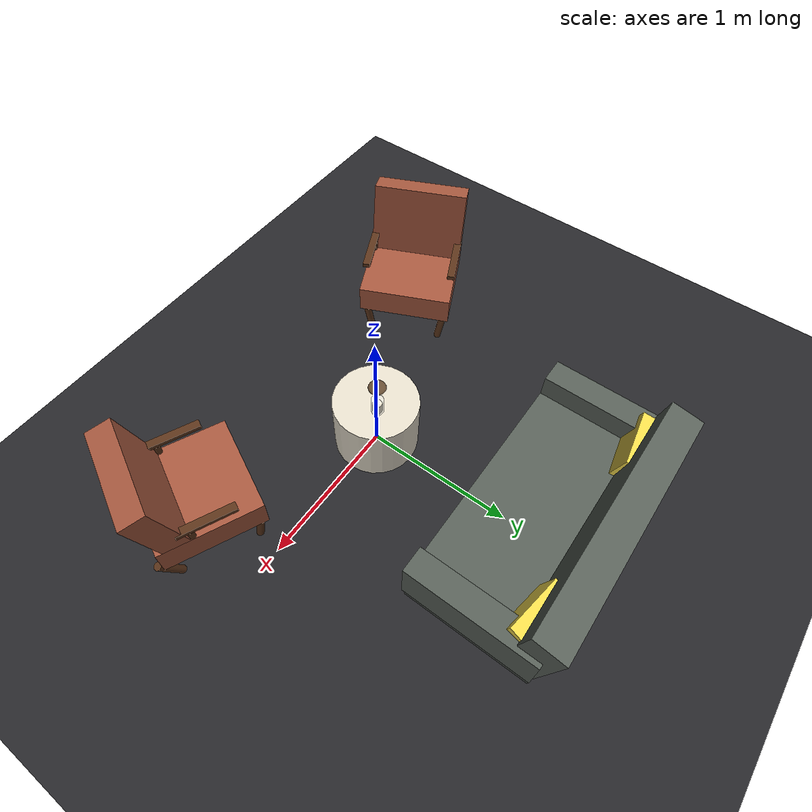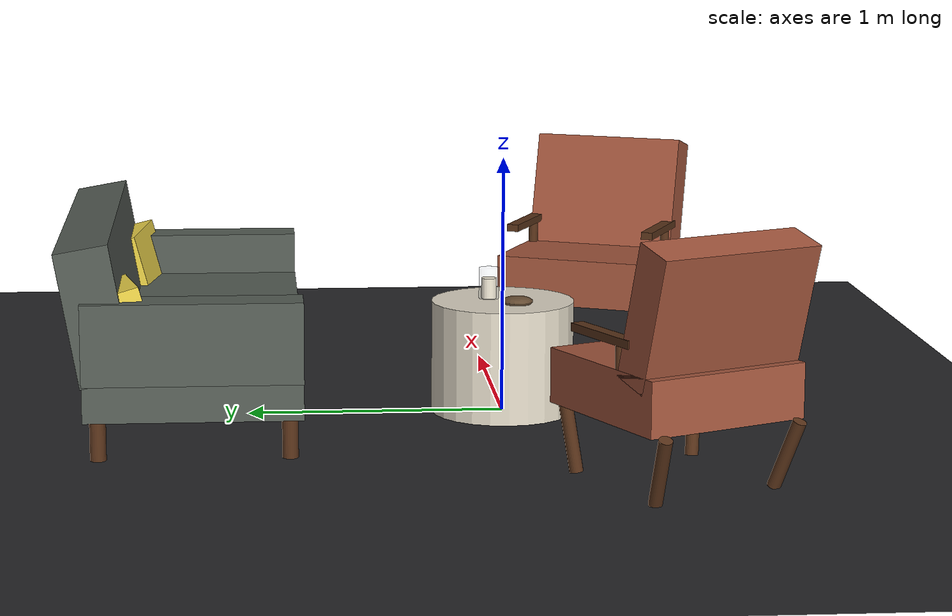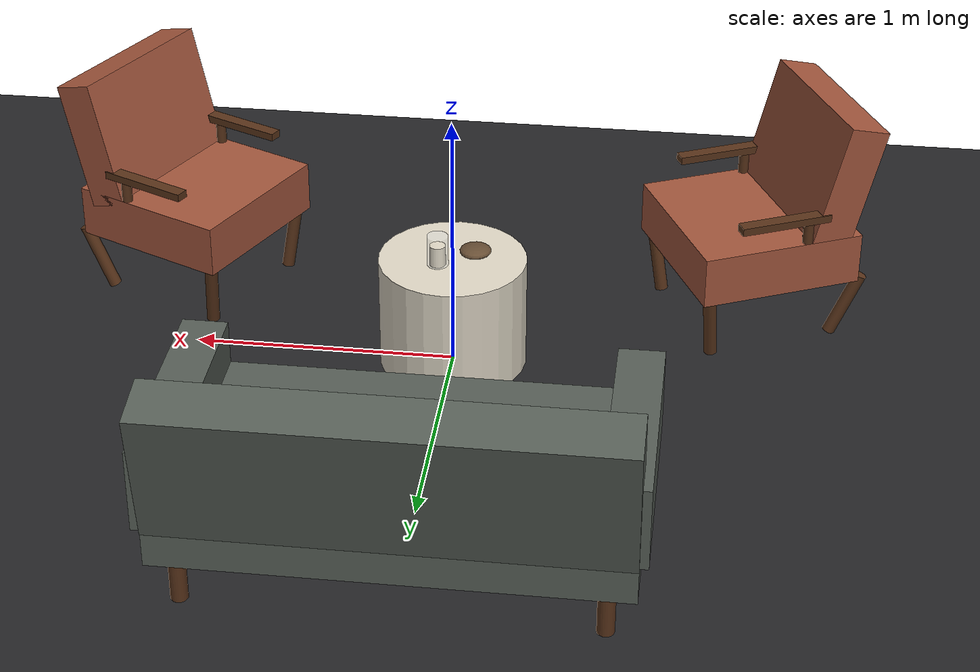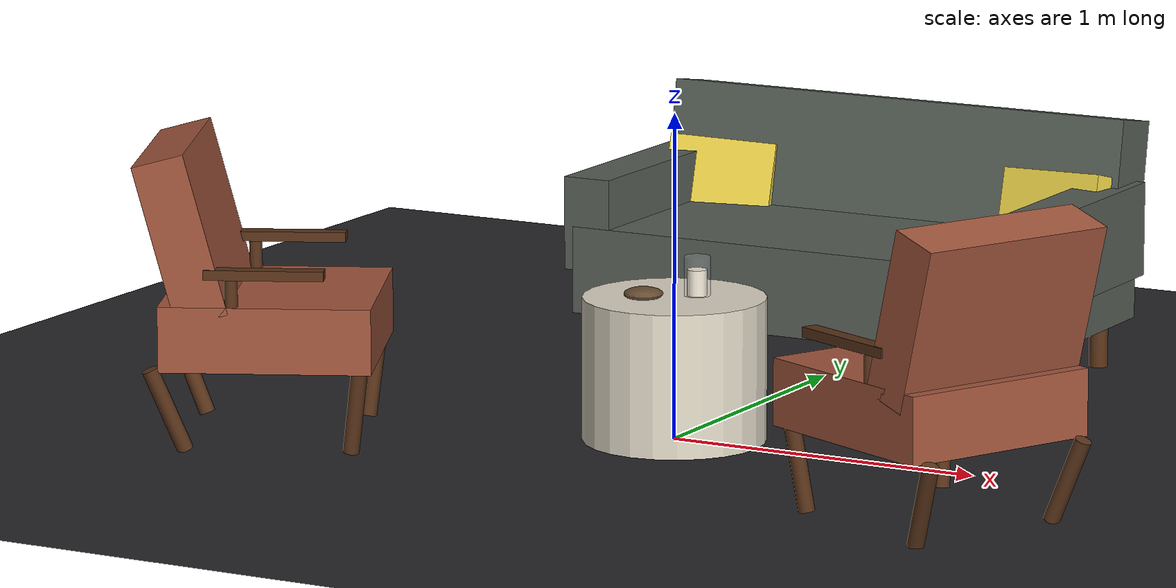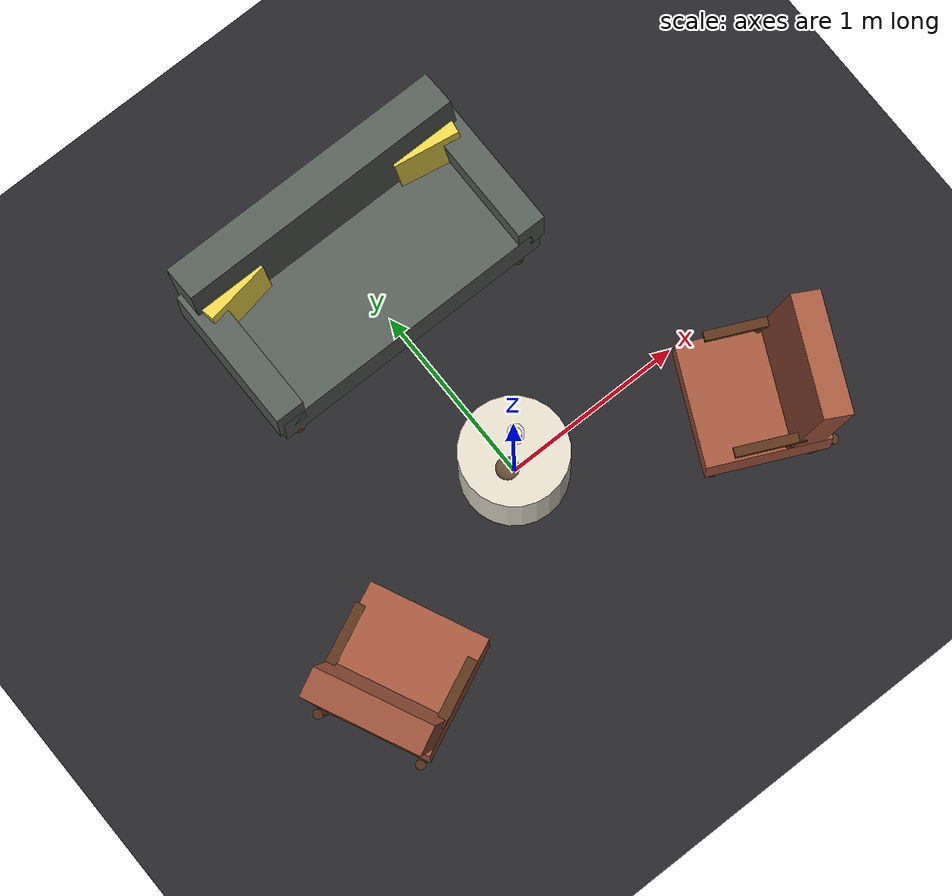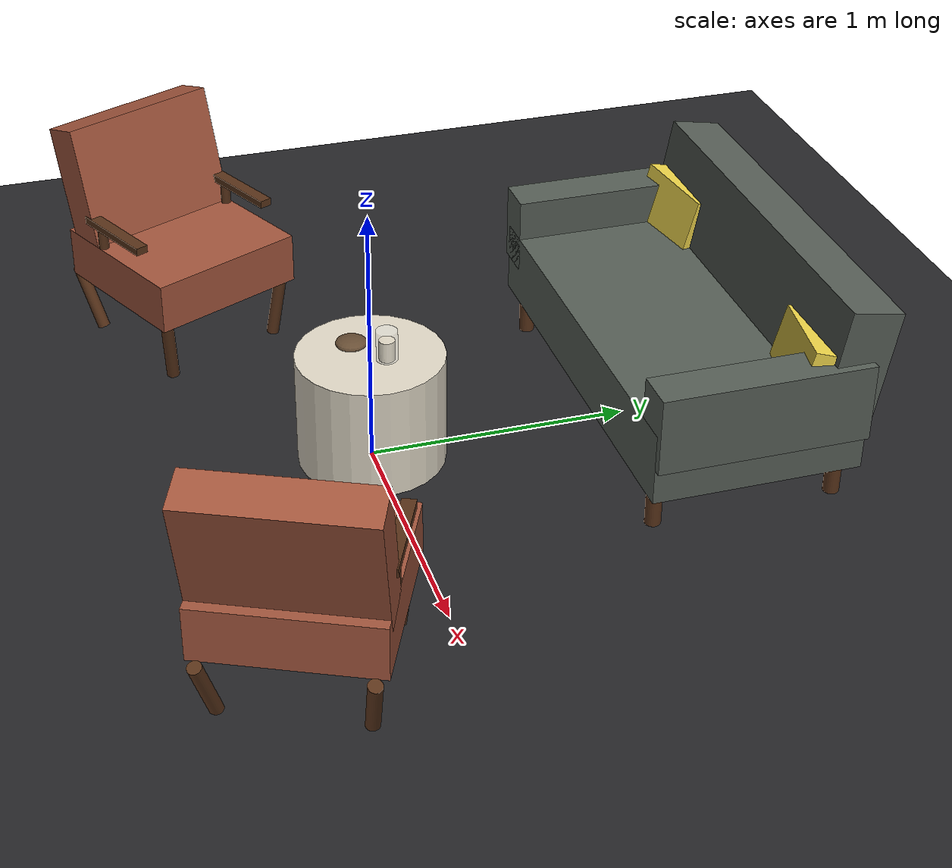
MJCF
<mujoco model="lounge_set">
  <compiler angle="degree" coordinate="local" inertiafromgeom="true" autolimits="true"/>
  <option timestep="0.002" gravity="0 0 -9.81"/>

  <visual>
    <!-- Professional Grade Optimization -->
    <headlight ambient="0.3 0.3 0.35" diffuse="0.4 0.4 0.45" specular="0.1 0.1 0.1"/>
    <rgba haze="0.85 0.88 0.92 1"/>
    <global offwidth="3840" offheight="2160" fovy="45"/>
    <quality shadowsize="4096" offsamples="8"/>
    <map znear="0.01" zfar="100" shadowscale="0.5"/>
  </visual>

  <statistic extent="4" center="0 0 1"/>

  <asset>
    <!-- High-Res Textures -->
    <texture name="tex_fabric_grey" type="2d" builtin="checker" rgb1="0.35 0.38 0.35" rgb2="0.33 0.36 0.33" width="1024" height="1024" mark="cross" markrgb="0.3 0.33 0.3"/>
    <texture name="tex_fabric_terra" type="2d" builtin="checker" rgb1="0.65 0.35 0.25" rgb2="0.63 0.33 0.23" width="1024" height="1024" mark="cross" markrgb="0.6 0.3 0.2"/>
    <texture name="tex_fabric_yellow" type="2d" builtin="checker" rgb1="0.95 0.85 0.3" rgb2="0.93 0.83 0.28" width="1024" height="1024" mark="cross" markrgb="0.9 0.8 0.25"/>
    <texture name="tex_glossy_beige" type="2d" builtin="flat" rgb1="0.88 0.85 0.78" width="1024" height="1024"/>
    <texture name="tex_wood_dark" type="2d" builtin="flat" rgb1="0.35 0.2 0.1" width="1024" height="1024"/>
    <texture name="tex_leather_bump" type="2d" builtin="flat" rgb1="0.5 0.5 1.0" width="1024" height="1024"/> <!-- Normal map placeholder -->

    <!-- PBR-like Materials -->
    <material name="mat_sofa_grey" texture="tex_fabric_grey" texrepeat="4 4" reflectance="0.15" shininess="0.2" specular="0.1" emission="0.0"/>
    <material name="mat_armchair_terra" texture="tex_fabric_terra" texrepeat="3 3" reflectance="0.15" shininess="0.2" specular="0.1" emission="0.0"/>
    <material name="mat_pillow_yellow" texture="tex_fabric_yellow" texrepeat="2 2" reflectance="0.2" shininess="0.3" specular="0.15"/>
    <material name="mat_table_glossy" texture="tex_glossy_beige" reflectance="0.7" shininess="0.9" specular="0.8"/>
    <material name="mat_wood_dark" texture="tex_wood_dark" reflectance="0.3" shininess="0.4" specular="0.2"/>
    <material name="mat_glass_clear" rgba="0.9 0.95 1.0 0.2" reflectance="0.9" shininess="1.0" specular="0.9"/>
  </asset>

  <worldbody>
    <!-- Enhanced Lighting -->
    <light pos="3 3 5" dir="-0.5 -0.5 -1" diffuse="0.95 0.9 0.85" specular="0.4 0.4 0.4" castshadow="true" cutoff="60"/>
    <light pos="-2 -2 4" dir="0.5 0.5 -1" diffuse="0.3 0.35 0.4" specular="0.1 0.1 0.1" castshadow="false"/> <!-- Fill light -->
    <light pos="0 0 3" dir="0 0 -1" diffuse="0.2 0.2 0.2" specular="0.0 0.0 0.0" castshadow="false"/> <!-- Ambient imitation -->

    <geom name="floor" type="plane" pos="0 0 0" size="3 3 0.1" rgba="0.15 0.15 0.16 1"/>

    <!-- ================= CYLINDRICAL COFFEE TABLE ================= -->
    <body name="coffee_table" pos="0 0 0">
        <!-- Solid cylindrical body -->
        <geom name="ct_body" type="cylinder" pos="0 0 0.22" size="0.28 0.22" material="mat_table_glossy"/>

        <!-- Decor: Candle holder -->
        <geom name="ct_candle_glass" type="cylinder" pos="0.05 0.05 0.5" size="0.04 0.06" material="mat_glass_clear"/>
        <geom name="ct_candle" type="cylinder" pos="0.05 0.05 0.48" size="0.03 0.04" rgba="0.95 0.9 0.8 1"/>
        <!-- Decor: Small dish -->
        <geom name="ct_dish" type="ellipsoid" pos="-0.08 -0.05 0.45" size="0.06 0.06 0.02" rgba="0.4 0.3 0.2 1"/>
    </body>

    <!-- ================= 2-SEATER SOFA (Grey) ================= -->
    <body name="sofa_grey" pos="0 1.2 0" euler="0 0 0">
        <!-- Legs -->
        <geom name="sf_leg_fl" type="cylinder" pos="-0.7 -0.35 0.08" size="0.03 0.08" material="mat_wood_dark"/>
        <geom name="sf_leg_fr" type="cylinder" pos=" 0.7 -0.35 0.08" size="0.03 0.08" material="mat_wood_dark"/>
        <geom name="sf_leg_bl" type="cylinder" pos="-0.7  0.35 0.08" size="0.03 0.08" material="mat_wood_dark"/>
        <geom name="sf_leg_br" type="cylinder" pos=" 0.7  0.35 0.08" size="0.03 0.08" material="mat_wood_dark"/>

        <!-- Seat Base -->
        <geom name="sf_seat" type="box" pos="0 0 0.3" size="0.8 0.4 0.14" material="mat_sofa_grey"/>

        <!-- Backrest -->
        <geom name="sf_back" type="box" pos="0 0.35 0.55" size="0.8 0.1 0.25" euler="-10 0 0" material="mat_sofa_grey"/>

        <!-- Armrests -->
        <geom name="sf_arm_l" type="box" pos="-0.75 0 0.45" size="0.08 0.4 0.15" material="mat_sofa_grey"/>
        <geom name="sf_arm_r" type="box" pos=" 0.75 0 0.45" size="0.08 0.4 0.15" material="mat_sofa_grey"/>

        <!-- Throw Pillows (Yellow) -->
        <geom name="sf_pillow1" type="box" pos="-0.6 0.25 0.45" size="0.18 0.08 0.18" euler="-15 0 10" material="mat_pillow_yellow"/>
        <geom name="sf_pillow2" type="box" pos=" 0.6 0.25 0.45" size="0.18 0.08 0.18" euler="-15 0 -10" material="mat_pillow_yellow"/>
    </body>

    <!-- ================= ARMCHAIR 1 (Terracotta) ================= -->
    <body name="armchair_1" pos="-1.1 -0.5 0" euler="0 0 115">
        <!-- Legs -->
        <geom name="ac1_leg_fl" type="cylinder" fromto="-0.25 -0.25 0 -0.28 -0.28 0.25" size="0.025" material="mat_wood_dark"/>
        <geom name="ac1_leg_fr" type="cylinder" fromto=" 0.25 -0.25 0  0.28 -0.28 0.25" size="0.025" material="mat_wood_dark"/>
        <geom name="ac1_leg_bl" type="cylinder" fromto="-0.25  0.25 0 -0.28  0.35 0.25" size="0.025" material="mat_wood_dark"/>
        <geom name="ac1_leg_br" type="cylinder" fromto=" 0.25  0.25 0  0.28  0.35 0.25" size="0.025" material="mat_wood_dark"/>

        <!-- Seat -->
        <geom name="ac1_seat" type="box" pos="0 0 0.35" size="0.32 0.32 0.1" material="mat_armchair_terra"/>

        <!-- Backrest -->
        <geom name="ac1_back" type="box" pos="0 0.25 0.65" size="0.32 0.08 0.25" euler="-15 0 0" material="mat_armchair_terra"/>

        <!-- Wooden Arms -->
        <body name="ac1_arms">
             <!-- Left Arm Frame -->
             <geom name="ac1_arm_l_v" type="cylinder" fromto="-0.3 0.1 0.25 -0.3 0.1 0.55" size="0.02" material="mat_wood_dark"/>
             <geom name="ac1_arm_l_h" type="box" pos="-0.3 0 0.55" size="0.025 0.18 0.015" material="mat_wood_dark"/>

             <!-- Right Arm Frame -->
             <geom name="ac1_arm_r_v" type="cylinder" fromto=" 0.3 0.1 0.25  0.3 0.1 0.55" size="0.02" material="mat_wood_dark"/>
             <geom name="ac1_arm_r_h" type="box" pos=" 0.3 0 0.55" size="0.025 0.18 0.015" material="mat_wood_dark"/>
        </body>
    </body>

    <!-- ================= ARMCHAIR 2 (Terracotta) ================= -->
    <body name="armchair_2" pos="1.1 -0.5 0" euler="0 0 -115">
        <!-- Legs -->
        <geom name="ac2_leg_fl" type="cylinder" fromto="-0.25 -0.25 0 -0.28 -0.28 0.25" size="0.025" material="mat_wood_dark"/>
        <geom name="ac2_leg_fr" type="cylinder" fromto=" 0.25 -0.25 0  0.28 -0.28 0.25" size="0.025" material="mat_wood_dark"/>
        <geom name="ac2_leg_bl" type="cylinder" fromto="-0.25  0.25 0 -0.28  0.35 0.25" size="0.025" material="mat_wood_dark"/>
        <geom name="ac2_leg_br" type="cylinder" fromto=" 0.25  0.25 0  0.28  0.35 0.25" size="0.025" material="mat_wood_dark"/>

        <!-- Seat -->
        <geom name="ac2_seat" type="box" pos="0 0 0.35" size="0.32 0.32 0.1" material="mat_armchair_terra"/>

        <!-- Backrest -->
        <geom name="ac2_back" type="box" pos="0 0.25 0.65" size="0.32 0.08 0.25" euler="-15 0 0" material="mat_armchair_terra"/>

        <!-- Wooden Arms -->
        <body name="ac2_arms">
             <geom name="ac2_arm_l_v" type="cylinder" fromto="-0.3 0.1 0.25 -0.3 0.1 0.55" size="0.02" material="mat_wood_dark"/>
             <geom name="ac2_arm_l_h" type="box" pos="-0.3 0 0.55" size="0.025 0.18 0.015" material="mat_wood_dark"/>

             <geom name="ac2_arm_r_v" type="cylinder" fromto=" 0.3 0.1 0.25  0.3 0.1 0.55" size="0.02" material="mat_wood_dark"/>
             <geom name="ac2_arm_r_h" type="box" pos=" 0.3 0 0.55" size="0.025 0.18 0.015" material="mat_wood_dark"/>
        </body>
    </body>

  </worldbody>
</mujoco>
